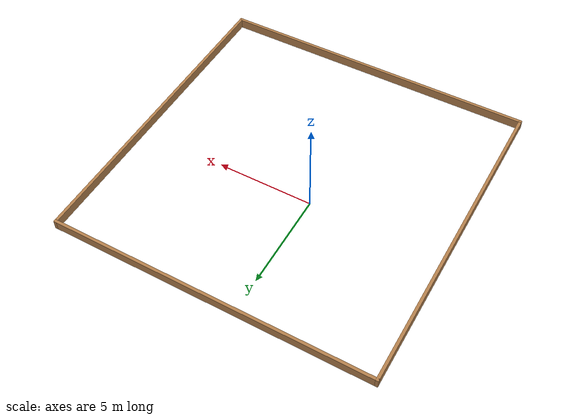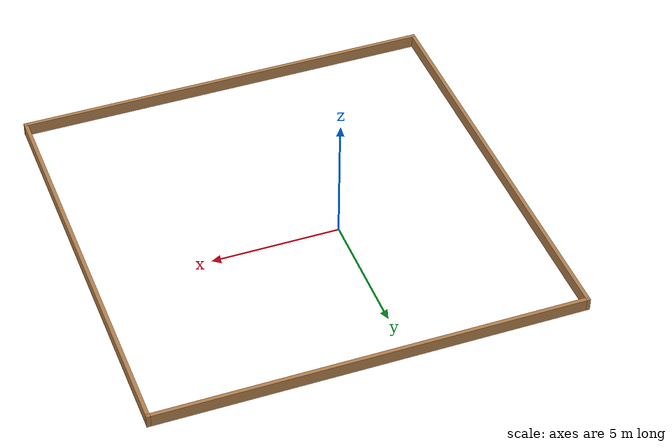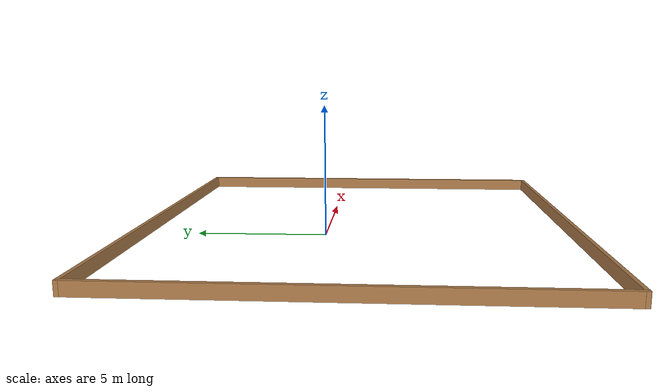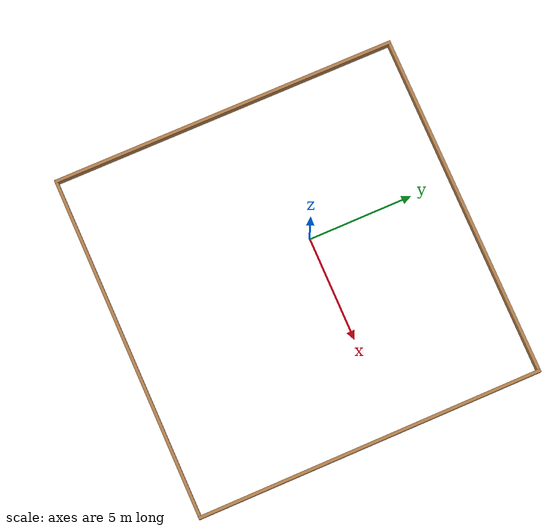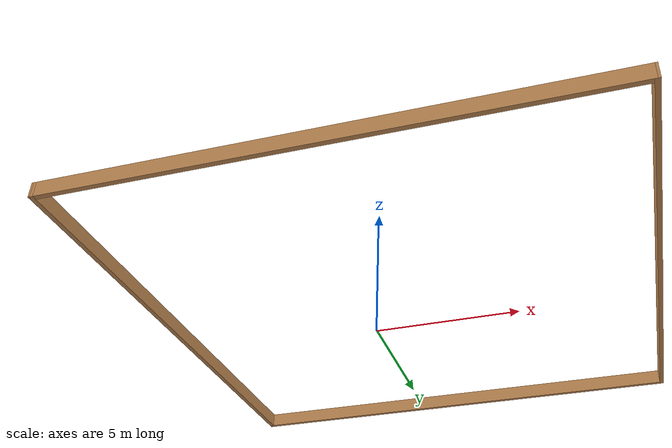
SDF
<?xml version='1.0'?>
<sdf version='1.7'>
  <model name='parede'>
    <pose>1.329 -1.28727 0 0 -0 0</pose>
    <link name='Wall_11'>
      <collision name='Wall_11_Collision'>
        <geometry>
          <box>
            <size>16.6199 0.15 0.5</size>
          </box>
        </geometry>
        <pose>0 0 0.25 0 -0 0</pose>
      </collision>
      <visual name='Wall_11_Visual'>
        <pose>0 0 0.25 0 -0 0</pose>
        <geometry>
          <box>
            <size>16.6199 0.15 0.5</size>
          </box>
        </geometry>
        <material>
          <script>
            <uri>file://media/materials/scripts/gazebo.material</uri>
            <name>Gazebo/Wood</name>
          </script>
          <ambient>1 1 1 1</ambient>
        </material>
        <meta>
          <layer>0</layer>
        </meta>
      </visual>
      <pose>-8.2472 0.00012 0 0 -0 -1.57077</pose>
    </link>
    <link name='Wall_14'>
      <collision name='Wall_14_Collision'>
        <geometry>
          <box>
            <size>16.5 0.15 0.5</size>
          </box>
        </geometry>
        <pose>0 0 0.25 0 -0 0</pose>
      </collision>
      <visual name='Wall_14_Visual'>
        <pose>0 0 0.25 0 -0 0</pose>
        <geometry>
          <box>
            <size>16.5 0.15 0.5</size>
          </box>
        </geometry>
        <material>
          <script>
            <uri>file://media/materials/scripts/gazebo.material</uri>
            <name>Gazebo/Wood</name>
          </script>
          <ambient>1 1 1 1</ambient>
        </material>
        <meta>
          <layer>0</layer>
        </meta>
      </visual>
      <pose>8.247 0.060273 0 0 -0 -1.5708</pose>
    </link>
    <link name='Wall_17'>
      <collision name='Wall_17_Collision'>
        <geometry>
          <box>
            <size>16.6453 0.15 0.5</size>
          </box>
        </geometry>
        <pose>0 0 0.25 0 -0 0</pose>
      </collision>
      <visual name='Wall_17_Visual'>
        <pose>0 0 0.25 0 -0 0</pose>
        <geometry>
          <box>
            <size>16.6453 0.15 0.5</size>
          </box>
        </geometry>
        <material>
          <script>
            <uri>file://media/materials/scripts/gazebo.material</uri>
            <name>Gazebo/Wood</name>
          </script>
          <ambient>1 1 1 1</ambient>
        </material>
        <meta>
          <layer>0</layer>
        </meta>
      </visual>
      <pose>-0 -8.17473 0 0 -0 -3.13432</pose>
    </link>
    <link name='Wall_6'>
      <collision name='Wall_6_Collision'>
        <geometry>
          <box>
            <size>16.6449 0.15 0.5</size>
          </box>
        </geometry>
        <pose>0 0 0.25 0 -0 0</pose>
      </collision>
      <visual name='Wall_6_Visual'>
        <pose>0 0 0.25 0 -0 0</pose>
        <geometry>
          <box>
            <size>16.6449 0.15 0.5</size>
          </box>
        </geometry>
        <material>
          <script>
            <uri>file://media/materials/scripts/gazebo.material</uri>
            <name>Gazebo/Wood</name>
          </script>
          <ambient>1 0.764706 0.305882 1</ambient>
        </material>
        <meta>
          <layer>0</layer>
        </meta>
      </visual>
      <pose>-0.000196 8.23512 0 0 -0 1.8e-05</pose>
    </link>
    <static>1</static>
  </model>
</sdf>
